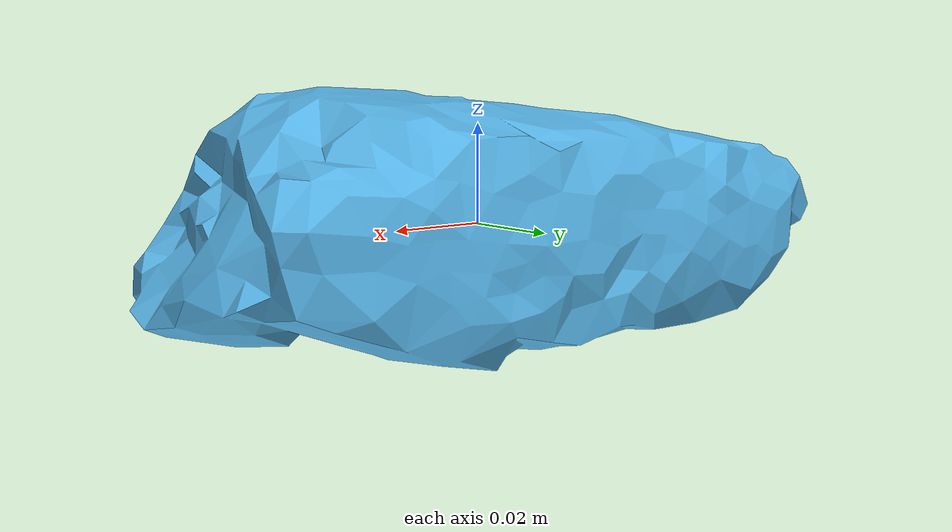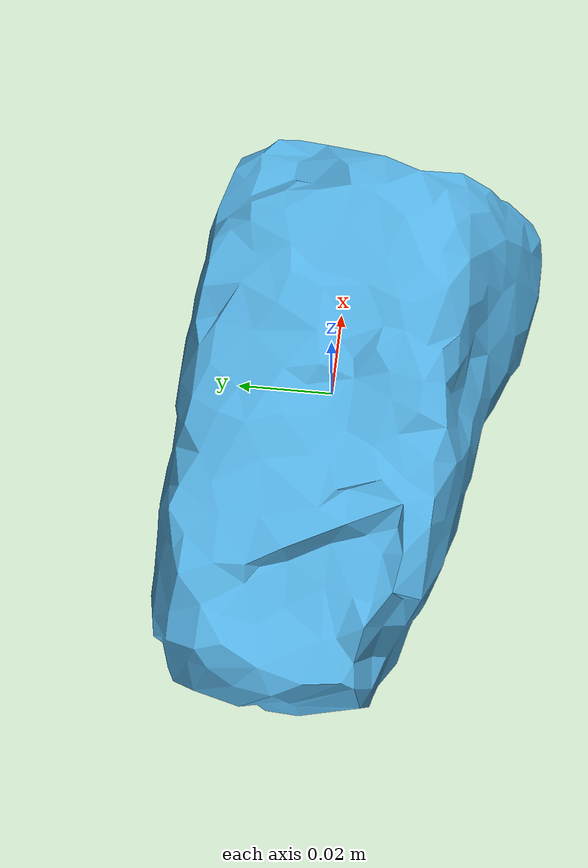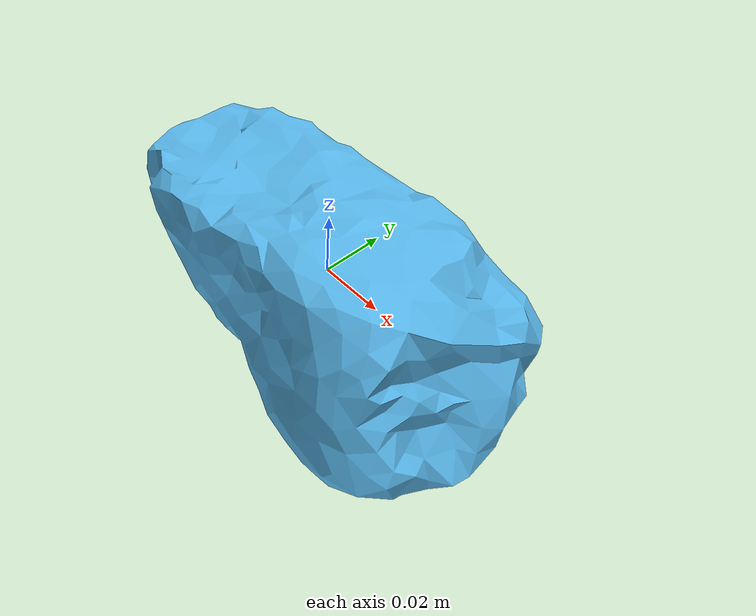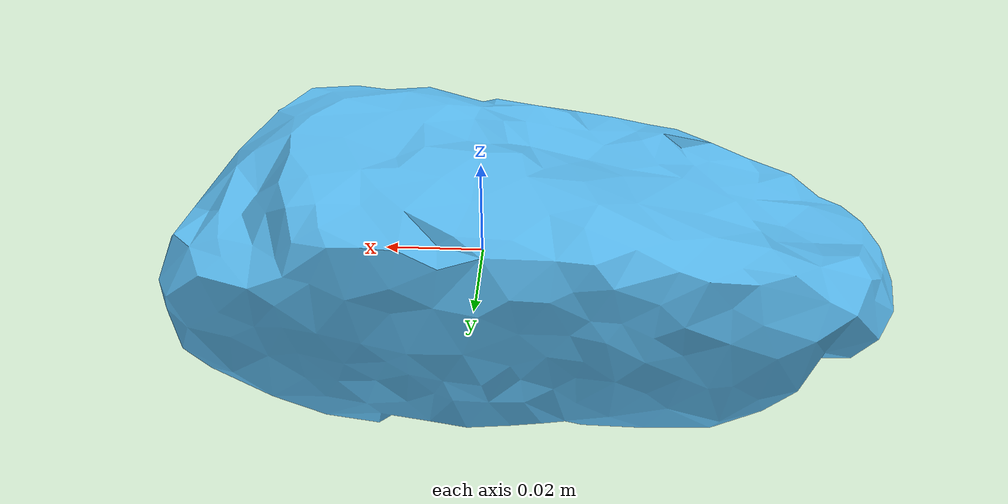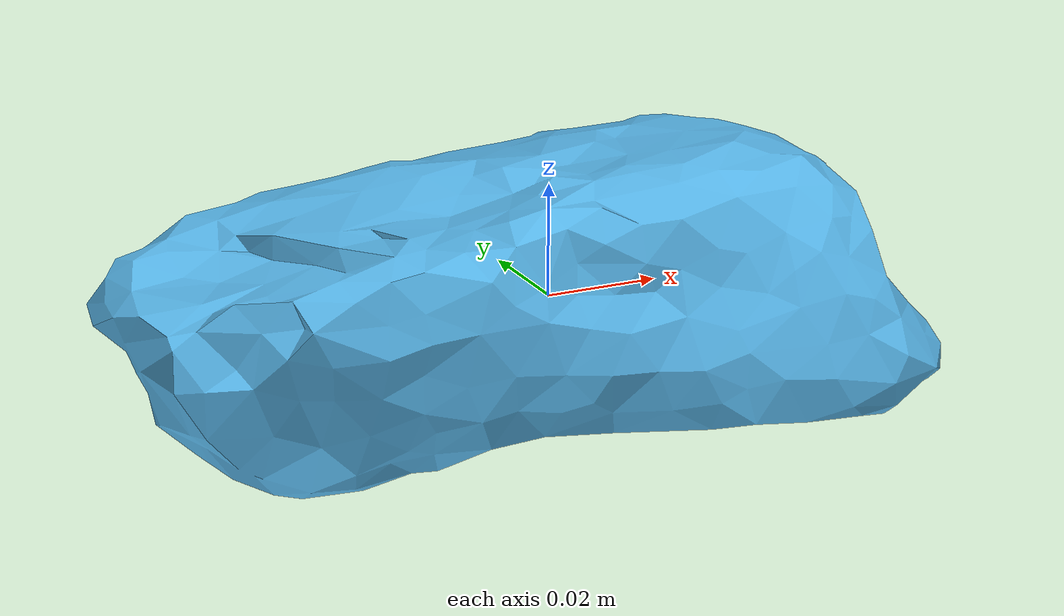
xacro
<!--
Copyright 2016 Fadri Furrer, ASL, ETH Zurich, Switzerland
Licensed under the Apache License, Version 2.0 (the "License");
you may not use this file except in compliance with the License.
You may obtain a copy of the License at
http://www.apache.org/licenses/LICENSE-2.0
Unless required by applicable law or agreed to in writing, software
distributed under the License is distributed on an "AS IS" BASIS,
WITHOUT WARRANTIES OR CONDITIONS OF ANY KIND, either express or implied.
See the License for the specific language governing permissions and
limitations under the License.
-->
<?xml version="1.0"?>

<robot name="stone_6" xmlns:xacro="http://ros.org/wiki/xacro">
<xacro:property name="mesh_file" value="package://urdf_models/models/stone_6/mesh/stone_6.stl" />
  <xacro:property name="mass" value="1.0" />
  <link name="base_link"></link>

  <joint name="base_joint" type="fixed">
    <origin xyz="0 0 0" rpy="0 0 0" />
    <parent link="base_link" />
    <child link="base_link_inertia" />
  </joint>
  <link name="base_link_inertia">
  <inertial>
    <mass value="${mass}" />  <!-- [kg] -->
    <origin xyz=" -0.021062e-1 -0.000296e-1 0.000037e-1" />
    <inertia ixx="0.012356e-02" ixy="0.002844e-02" ixz="-0.000649e-02"
                                iyy="0.036694e-02"  iyz="0.000183e-02"
                                                    izz="0.041529e-02" />
   </inertial>

      <visual>
        <origin xyz="0 0 0" rpy="0 0 0" />
        <geometry>
          <mesh filename="${mesh_file}" scale="1 1 1" />
        </geometry>
      </visual>

      <collision>
        <origin xyz="0 0 0" rpy="0 0 0" />
        <geometry>
          <mesh filename="${mesh_file}" scale="1 1 1" />
        </geometry>
      </collision>
    </link>

    <gazebo reference="base_link">
        <mu1 value="0.1"/>
        <mu2 value="0.1"/>
        <kp  value="5000000.0" />
        <kd  value="1.0" />
        <fdir1 value="1 0 0"/>
        <collision>
            <surface>
              <bounce>
                <restitution_coefficient> 0.1 </restitution_coefficient>
                <threshold>0.</threshold>
              </bounce>
            <contact>
                <ode>
                  <max_vel>10</max_vel>
                  <min_depth>0.001</min_depth>
                </ode>
            </contact>
            </surface>
       </collision>
        <material name="Gray">
        <color rgba="0.8 0.8 0.8 1"/>
      </material>
        <turnGravityOff>false</turnGravityOff>
    </gazebo>

</robot>
